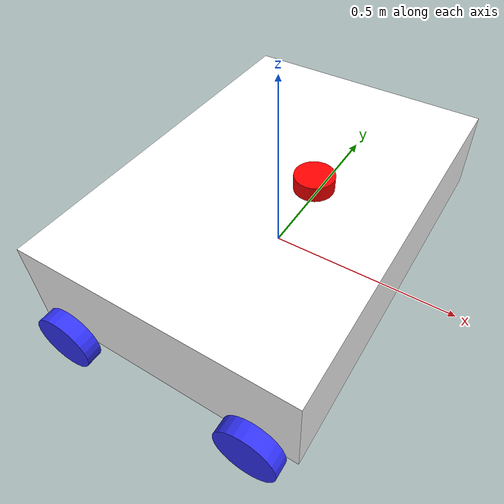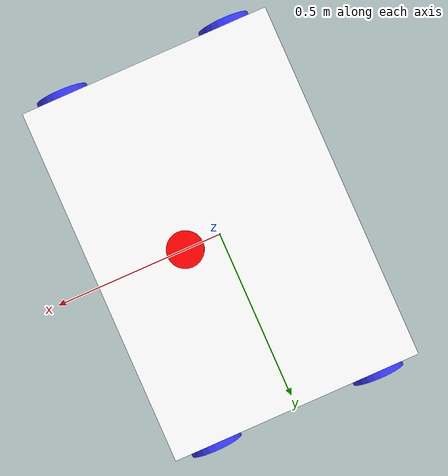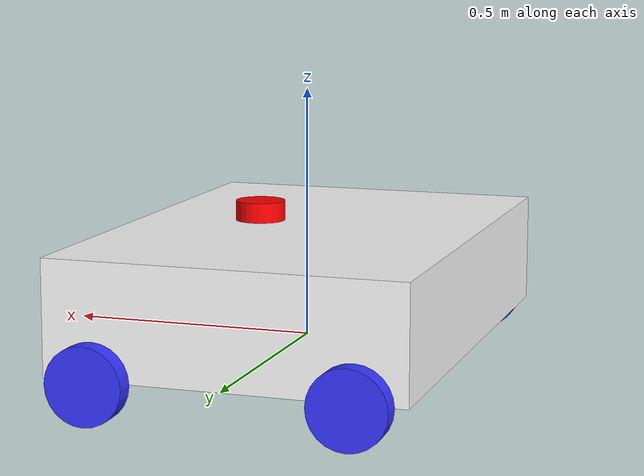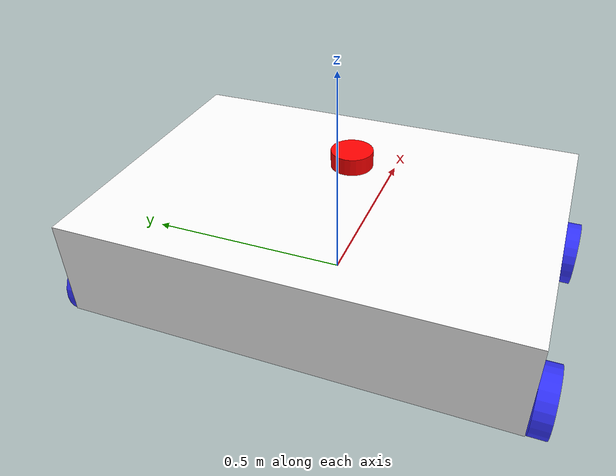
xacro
<?xml version="1.0"?>
<robot xmlns:xacro="http://www.ros.org/wiki/xacro"  name="robot">

    <xacro:include filename="robot_core.xacro" />
    <xacro:include filename="inertial_macros.xacro" />
    <xacro:include filename="lidar.xacro" />
    <xacro:include filename="ros2_control.xacro" />

</robot>

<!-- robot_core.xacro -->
<robot xmlns:xacro="http://www.ros.org/wiki/xacro">

    <xacro:include filename="inertial_macros.xacro" />

    <material name="white">
        <color rgba="1 1 1 1" />
    </material>

    <material name="orange">
        <color rgba="1 0.3 0.1 1" />
    </material>

    <material name="blue">
        <color rgba="0.2 0.2 1 1" />
    </material>

    <material name="black">
        <color rgba="0 0 0 1" />
    </material>

    <material name="red">
        <color rgba="1 0 0 1" />
    </material>

    <!-- BASE LINK -->
    <link name="base_link">
    </link>

    <!-- BASE_FOOTPRINT LINK -->

    <joint name="base_footprint_joint" type="fixed">
        <parent link="base_link"/>
        <child link="base_footprint"/>
        <origin xyz="0 0 0" rpy="0 0 0"/>
    </joint>

    <link name="base_footprint">
    </link>

    <!-- CHASSIS LINK -->
    <joint name="chassis_joint" type="fixed">
        <parent link="base_link"/>
        <child link="chassis"/>
        <origin xyz="0 0 0"/>
    </joint>

    <link name="chassis">
        <visual>
            <origin xyz="0 0 0.1125"/>
            <geometry>
                <box size="0.7 1 0.225"/>
            </geometry>
            <material name="white"/>
        </visual>
        <collision>
            <origin xyz="0 0 0.1125"/>
            <geometry>
                <box size="0.7 1.0 0.225"/>
            </geometry>
        </collision>
        <xacro:inertial_box mass="0.5" x="0.7" y="1.0" z="0.225">
            <origin xyz="0 0 0.1125" rpy="0 0 0" />
        </xacro:inertial_box>
    </link>

    <gazebo reference="chassis">
        <material>Gazebo/White</material>
    </gazebo>

    <!-- LEFT WHEEL LINK -->
    <joint name="back_left_wheel_joint" type="continuous">
        <parent link="base_link"/>
        <child link="left_wheel"/>
        <origin xyz="0.25 0.525 0" rpy="-${pi/2} 0 0" />
        <axis xyz="0 0 1"/>
    </joint>

    <link name="left_wheel">
        <visual>
            <geometry>
                <cylinder radius="0.076" length="0.04"/>
            </geometry>
            <material name="blue"/>
        </visual>
        <collision>
            <geometry>
                <cylinder radius="0.076" length="0.04"/>
            </geometry>
        </collision>
        <xacro:inertial_cylinder mass="0.5" length="0.04" radius="0.076">
            <origin xyz="0 0 0" rpy="0 0 0" />
        </xacro:inertial_cylinder>
    </link>

    <gazebo reference="left_wheel">
        <material>Gazebo/Blue</material>
        <mu1 value="5.0"/>
        <mu2 value="5.0"/>
    </gazebo>

    <!-- RIGHT WHEEL LINK -->
    <joint name="back_right_wheel_joint" type="continuous">
        <parent link="base_link"/>
        <child link="right_wheel"/>
        <origin xyz="0.25 -0.525 0" rpy="${pi/2} 0 0" />
        <axis xyz="0 0 -1"/>
    </joint>

    <link name="right_wheel">
        <visual>
            <geometry>
                <cylinder radius="0.076" length="0.04"/>
            </geometry>
            <material name="blue"/>
        </visual>
        <collision>
            <geometry>
                <cylinder radius="0.076" length="0.04"/>
            </geometry>
        </collision>
        <xacro:inertial_cylinder mass="0.5" length="0.04" radius="0.076">
            <origin xyz="0 0 0" rpy="0 0 0" />
        </xacro:inertial_cylinder>
    </link>

    <gazebo reference="right_wheel">
        <material>Gazebo/Blue</material>
        <mu1 value="5.0"/>
        <mu2 value="5.0"/>
    </gazebo>

    <!-- RIGHT FRONT WHEEL LINK -->
    <joint name="front_right_wheel_joint" type="continuous">
        <parent link="base_link" />
        <child link="right_front_wheel" />
        <origin xyz="-0.25 -0.525 0" rpy="${pi/2} 0 0" />
        <axis xyz="0 0 -1" />
    </joint>

    <link name="right_front_wheel">
        <visual>
            <geometry>
                <cylinder radius="0.076" length="0.04" />
            </geometry>
            <material name="blue" />
        </visual>
        <collision>
            <geometry>
                <cylinder radius="0.076" length="0.04" />
            </geometry>
        </collision>
        <xacro:inertial_cylinder mass="0.5" length="0.04" radius="0.076">
            <origin xyz="0 0 0" rpy="0 0 0" />
        </xacro:inertial_cylinder>
    </link>

    <gazebo reference="right_front_wheel">
        <material>Gazebo/Blue</material>
        <mu1 value="5.0"/>
        <mu2 value="5.0"/>
    </gazebo>

    <!-- LEFT FRONT WHEEL LINK -->
    <joint name="front_left_wheel_joint" type="continuous">
        <parent link="base_link" />
        <child link="left_front_wheel" />
        <origin xyz="-0.25 0.525 0" rpy="-${pi/2} 0 0" />
        <axis xyz="0 0 1" />
    </joint>

    <link name="left_front_wheel">
        <visual>
            <geometry>
                <cylinder radius="0.076" length="0.04" />
            </geometry>
            <material name="blue" />
        </visual>
        <collision>
            <geometry>
                <cylinder radius="0.076" length="0.04" />
            </geometry>
        </collision>
        <xacro:inertial_cylinder mass="0.5" length="0.04" radius="0.076">
            <origin xyz="0 0 0" rpy="0 0 0" />
        </xacro:inertial_cylinder>
    </link>

    <gazebo reference="left_front_wheel">
        <material>Gazebo/Blue</material>
       <mu1 value="5.0"/>
        <mu2 value="5.0"/>
    </gazebo>

    <!-- IMU LINK -->
    <joint name="imu_joint" type="fixed">
        <parent link="base_link" />
        <child link="imu_link" />
        <origin xyz="0 0 0" rpy="0 0 0" />
    </joint>

    <link name="imu_link">
        <visual>
            <geometry>
                <box size="0.01 0.01 0.01" />
            </geometry>
            <material name="white" />
        </visual>
        <collision>
            <geometry>
                <box size="0.01 0.01 0.01" />
            </geometry>
        </collision>
        <xacro:inertial_box mass="0.1" x="0.01" y="0.01" z="0.01">
            <origin xyz="0 0 0" rpy="0 0 0" />
        </xacro:inertial_box>
    </link>

    <gazebo reference="imu_link">
        <material>Gazebo/White</material>
    </gazebo>

</robot>

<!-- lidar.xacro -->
<robot xmlns:xacro="http://www.ros.org/wiki/xacro" >

    <joint name="laser_joint" type="fixed">
        <parent link="chassis"/>
        <child link="laser_frame"/>
        <origin xyz="0.1 0 0.25" rpy="0 0 0"/>
    </joint>

    <link name="laser_frame">
        <visual>
            <geometry>
                <cylinder radius="0.05" length="0.04"/>
            </geometry>
            <material name="red"/>
        </visual>
        <collision>
            <geometry>
                <cylinder radius="0.05" length="0.04"/>
            </geometry>
        </collision>
        <xacro:inertial_cylinder mass="0.1" length="0.04" radius="0.05">
            <origin xyz="0 0 0" rpy="0 0 0"/>
        </xacro:inertial_cylinder>
    </link>

    <gazebo reference="laser_frame">
        <material>Gazebo/Red</material>

        <sensor name="laser" type="ray">
            <pose> 0 0 0 0 0 0 </pose>
            <visualize>true</visualize>
            <update_rate>10</update_rate>
            <ray>
                <scan>
                    <horizontal>
                        <samples>360</samples>
                        <min_angle>-3.14</min_angle>
                        <max_angle>3.14</max_angle>
                    </horizontal>
                </scan>
                <range>
                    <min>0.3</min>
                    <max>12</max>
                </range>
            </ray>
            <plugin name="laser_controller" filename="libgazebo_ros_ray_sensor.so">
                <ros>
                    <argument>~/out:=scan</argument>
                </ros>
                <output_type>sensor_msgs/LaserScan</output_type>
                <frame_name>laser_frame</frame_name>
            </plugin>
        </sensor>
    </gazebo>

</robot>
